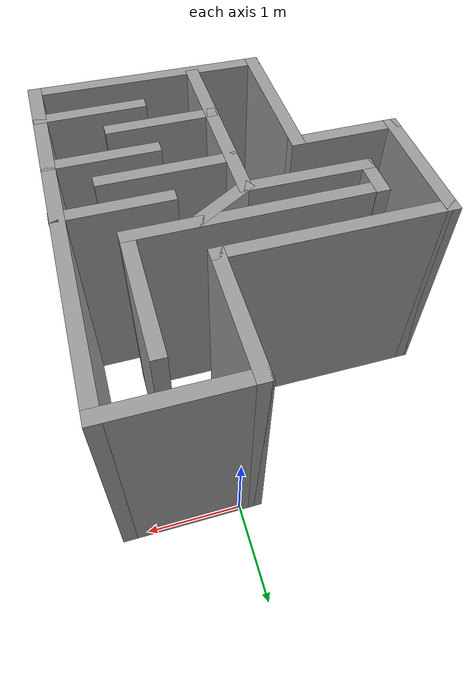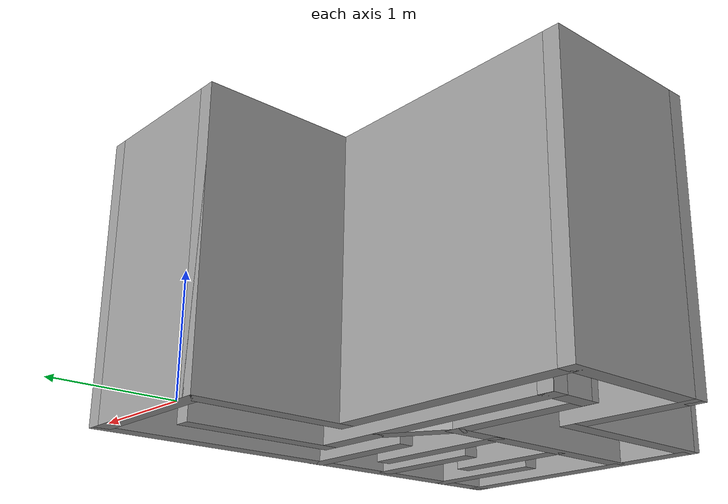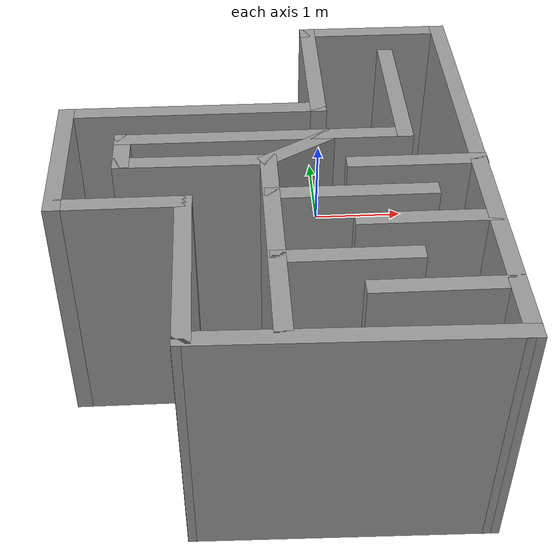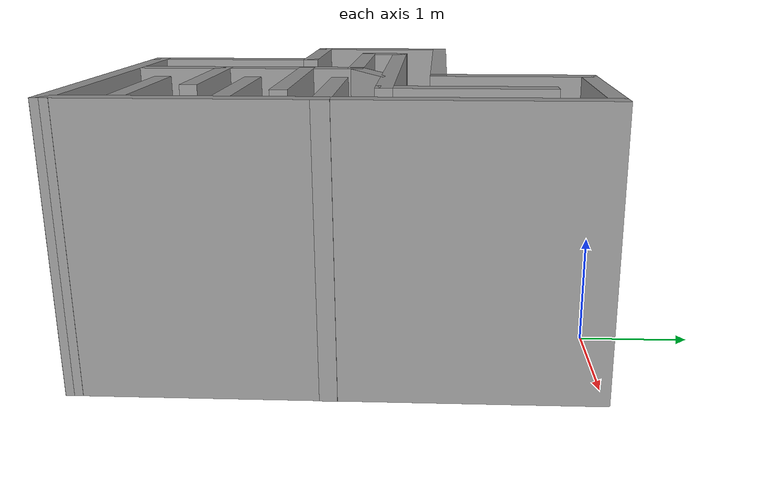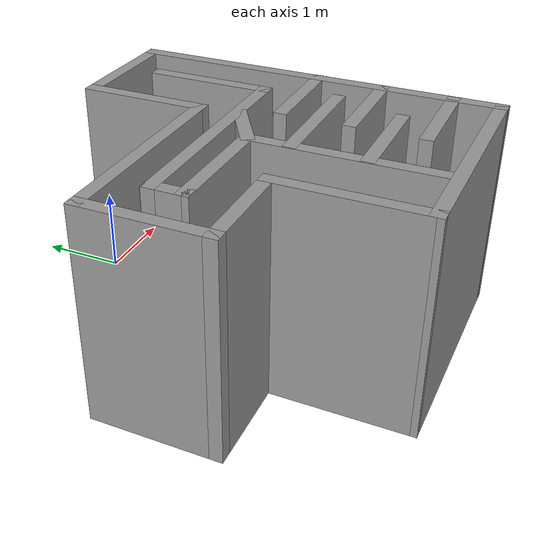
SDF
<?xml version='1.0'?>
<sdf version='1.7'>
  <model name='eval.world'>
    <pose>-0.657461 -2.21571 0 0 -0 0</pose>
    <link name='Wall_0'>
      <collision name='Wall_0_Collision'>
        <geometry>
          <box>
            <size>1.75 0.15 2.5</size>
          </box>
        </geometry>
        <pose>0 0 1.25 0 -0 0</pose>
      </collision>
      <visual name='Wall_0_Visual'>
        <pose>0 0 1.25 0 -0 0</pose>
        <geometry>
          <box>
            <size>1.75 0.15 2.5</size>
          </box>
        </geometry>
        <material>
          <script>
            <uri>file://media/materials/scripts/gazebo.material</uri>
            <name>Gazebo/Grey</name>
          </script>
          <ambient>1 1 1 1</ambient>
        </material>
        <meta>
          <layer>0</layer>
        </meta>
      </visual>
      <pose>-0.752539 -1.32429 0 0 -0 1.5708</pose>
    </link>
    <link name='Wall_1'>
      <collision name='Wall_1_Collision'>
        <geometry>
          <box>
            <size>1.25 0.15 2.5</size>
          </box>
        </geometry>
        <pose>0 0 1.25 0 -0 0</pose>
      </collision>
      <visual name='Wall_1_Visual'>
        <pose>0 0 1.25 0 -0 0</pose>
        <geometry>
          <box>
            <size>1.25 0.15 2.5</size>
          </box>
        </geometry>
        <material>
          <script>
            <uri>file://media/materials/scripts/gazebo.material</uri>
            <name>Gazebo/Grey</name>
          </script>
          <ambient>1 1 1 1</ambient>
        </material>
        <meta>
          <layer>0</layer>
        </meta>
      </visual>
      <pose>-1.30254 -0.524286 0 0 -0 3.14159</pose>
    </link>
    <link name='Wall_10'>
      <collision name='Wall_10_Collision'>
        <geometry>
          <box>
            <size>1.449 0.15 2.5</size>
          </box>
        </geometry>
        <pose>0 0 1.25 0 -0 0</pose>
      </collision>
      <visual name='Wall_10_Visual'>
        <pose>0 0 1.25 0 -0 0</pose>
        <geometry>
          <box>
            <size>1.449 0.15 2.5</size>
          </box>
        </geometry>
        <material>
          <script>
            <uri>file://media/materials/scripts/gazebo.material</uri>
            <name>Gazebo/Grey</name>
          </script>
          <ambient>1 1 1 1</ambient>
        </material>
        <meta>
          <layer>0</layer>
        </meta>
      </visual>
      <pose>-0.6584 0.029547 0 0 -0 3.13291</pose>
    </link>
    <link name='Wall_11'>
      <collision name='Wall_11_Collision'>
        <geometry>
          <box>
            <size>0.5 0.15 2.5</size>
          </box>
        </geometry>
        <pose>0 0 1.25 0 -0 0</pose>
      </collision>
      <visual name='Wall_11_Visual'>
        <pose>0 0 1.25 0 -0 0</pose>
        <geometry>
          <box>
            <size>0.5 0.15 2.5</size>
          </box>
        </geometry>
        <material>
          <script>
            <uri>file://media/materials/scripts/gazebo.material</uri>
            <name>Gazebo/Grey</name>
          </script>
          <ambient>1 1 1 1</ambient>
        </material>
        <meta>
          <layer>0</layer>
        </meta>
      </visual>
      <pose>-1.30787 0.215158 0 0 -0 1.5708</pose>
    </link>
    <link name='Wall_12'>
      <collision name='Wall_12_Collision'>
        <geometry>
          <box>
            <size>2.71023 0.15 2.5</size>
          </box>
        </geometry>
        <pose>0 0 1.25 0 -0 0</pose>
      </collision>
      <visual name='Wall_12_Visual'>
        <pose>0 0 1.25 0 -0 0</pose>
        <geometry>
          <box>
            <size>2.71023 0.15 2.5</size>
          </box>
        </geometry>
        <material>
          <script>
            <uri>file://media/materials/scripts/gazebo.material</uri>
            <name>Gazebo/Grey</name>
          </script>
          <ambient>1 1 1 1</ambient>
        </material>
        <meta>
          <layer>0</layer>
        </meta>
      </visual>
      <pose>-0.027761 0.385187 0 0 -0 0</pose>
    </link>
    <link name='Wall_13'>
      <collision name='Wall_13_Collision'>
        <geometry>
          <box>
            <size>1.5 0.15 2.5</size>
          </box>
        </geometry>
        <pose>0 0 1.25 0 -0 0</pose>
      </collision>
      <visual name='Wall_13_Visual'>
        <pose>0 0 1.25 0 -0 0</pose>
        <geometry>
          <box>
            <size>1.5 0.15 2.5</size>
          </box>
        </geometry>
        <material>
          <script>
            <uri>file://media/materials/scripts/gazebo.material</uri>
            <name>Gazebo/Grey</name>
          </script>
          <ambient>1 1 1 1</ambient>
        </material>
        <meta>
          <layer>0</layer>
        </meta>
      </visual>
      <pose>1.25235 1.06019 0 0 -0 1.5708</pose>
    </link>
    <link name='Wall_16'>
      <collision name='Wall_16_Collision'>
        <geometry>
          <box>
            <size>1.25 0.15 2.5</size>
          </box>
        </geometry>
        <pose>0 0 1.25 0 -0 0</pose>
      </collision>
      <visual name='Wall_16_Visual'>
        <pose>0 0 1.25 0 -0 0</pose>
        <geometry>
          <box>
            <size>1.25 0.15 2.5</size>
          </box>
        </geometry>
        <material>
          <script>
            <uri>file://media/materials/scripts/gazebo.material</uri>
            <name>Gazebo/Grey</name>
          </script>
          <ambient>1 1 1 1</ambient>
        </material>
        <meta>
          <layer>0</layer>
        </meta>
      </visual>
      <pose>1.30254 -0.048229 0 0 -0 3.14159</pose>
    </link>
    <link name='Wall_18'>
      <collision name='Wall_18_Collision'>
        <geometry>
          <box>
            <size>1.5 0.15 2.5</size>
          </box>
        </geometry>
        <pose>0 0 1.25 0 -0 0</pose>
      </collision>
      <visual name='Wall_18_Visual'>
        <pose>0 0 1.25 0 -0 0</pose>
        <geometry>
          <box>
            <size>1.5 0.15 2.5</size>
          </box>
        </geometry>
        <material>
          <script>
            <uri>file://media/materials/scripts/gazebo.material</uri>
            <name>Gazebo/Grey</name>
          </script>
          <ambient>1 1 1 1</ambient>
        </material>
        <meta>
          <layer>0</layer>
        </meta>
      </visual>
      <pose>0.684869 -0.453604 0 0 -0 0</pose>
    </link>
    <link name='Wall_2'>
      <collision name='Wall_2_Collision'>
        <geometry>
          <box>
            <size>1.5 0.15 2.5</size>
          </box>
        </geometry>
        <pose>0 0 1.25 0 -0 0</pose>
      </collision>
      <visual name='Wall_2_Visual'>
        <pose>0 0 1.25 0 -0 0</pose>
        <geometry>
          <box>
            <size>1.5 0.15 2.5</size>
          </box>
        </geometry>
        <material>
          <script>
            <uri>file://media/materials/scripts/gazebo.material</uri>
            <name>Gazebo/Grey</name>
          </script>
          <ambient>1 1 1 1</ambient>
        </material>
        <meta>
          <layer>0</layer>
        </meta>
      </visual>
      <pose>-1.85254 0.150714 0 0 -0 1.5708</pose>
    </link>
    <link name='Wall_20'>
      <collision name='Wall_20_Collision'>
        <geometry>
          <box>
            <size>1.25 0.15 2.5</size>
          </box>
        </geometry>
        <pose>0 0 1.25 0 -0 0</pose>
      </collision>
      <visual name='Wall_20_Visual'>
        <pose>0 0 1.25 0 -0 0</pose>
        <geometry>
          <box>
            <size>1.25 0.15 2.5</size>
          </box>
        </geometry>
        <material>
          <script>
            <uri>file://media/materials/scripts/gazebo.material</uri>
            <name>Gazebo/Grey</name>
          </script>
          <ambient>1 1 1 1</ambient>
        </material>
        <meta>
          <layer>0</layer>
        </meta>
      </visual>
      <pose>1.29126 -0.82907 0 0 -0 3.14159</pose>
    </link>
    <link name='Wall_22'>
      <collision name='Wall_22_Collision'>
        <geometry>
          <box>
            <size>1.25 0.15 2.5</size>
          </box>
        </geometry>
        <pose>0 0 1.25 0 -0 0</pose>
      </collision>
      <visual name='Wall_22_Visual'>
        <pose>0 0 1.25 0 -0 0</pose>
        <geometry>
          <box>
            <size>1.25 0.15 2.5</size>
          </box>
        </geometry>
        <material>
          <script>
            <uri>file://media/materials/scripts/gazebo.material</uri>
            <name>Gazebo/Grey</name>
          </script>
          <ambient>1 1 1 1</ambient>
        </material>
        <meta>
          <layer>0</layer>
        </meta>
      </visual>
      <pose>0.565262 -1.26027 0 0 -0 0</pose>
    </link>
    <link name='Wall_24'>
      <collision name='Wall_24_Collision'>
        <geometry>
          <box>
            <size>1.25 0.15 2.5</size>
          </box>
        </geometry>
        <pose>0 0 1.25 0 -0 0</pose>
      </collision>
      <visual name='Wall_24_Visual'>
        <pose>0 0 1.25 0 -0 0</pose>
        <geometry>
          <box>
            <size>1.25 0.15 2.5</size>
          </box>
        </geometry>
        <material>
          <script>
            <uri>file://media/materials/scripts/gazebo.material</uri>
            <name>Gazebo/Grey</name>
          </script>
          <ambient>1 1 1 1</ambient>
        </material>
        <meta>
          <layer>0</layer>
        </meta>
      </visual>
      <pose>1.28881 -1.64505 0 0 -0 3.14159</pose>
    </link>
    <link name='Wall_26'>
      <collision name='Wall_26_Collision'>
        <geometry>
          <box>
            <size>0.785304 0.15 2.5</size>
          </box>
        </geometry>
        <pose>0 0 1.25 0 -0 0</pose>
      </collision>
      <visual name='Wall_26_Visual'>
        <pose>0 0 1.25 0 -0 0</pose>
        <geometry>
          <box>
            <size>0.785304 0.15 2.5</size>
          </box>
        </geometry>
        <material>
          <script>
            <uri>file://media/materials/scripts/gazebo.material</uri>
            <name>Gazebo/Grey</name>
          </script>
          <ambient>1 1 1 1</ambient>
        </material>
        <meta>
          <layer>0</layer>
        </meta>
      </visual>
      <pose>0.265929 0.189468 0 0 -0 -2.59334</pose>
    </link>
    <link name='Wall_3'>
      <collision name='Wall_3_Collision'>
        <geometry>
          <box>
            <size>2.5 0.15 2.5</size>
          </box>
        </geometry>
        <pose>0 0 1.25 0 -0 0</pose>
      </collision>
      <visual name='Wall_3_Visual'>
        <pose>0 0 1.25 0 -0 0</pose>
        <geometry>
          <box>
            <size>2.5 0.15 2.5</size>
          </box>
        </geometry>
        <material>
          <script>
            <uri>file://media/materials/scripts/gazebo.material</uri>
            <name>Gazebo/Grey</name>
          </script>
          <ambient>1 1 1 1</ambient>
        </material>
        <meta>
          <layer>0</layer>
        </meta>
      </visual>
      <pose>-0.677539 0.825714 0 0 -0 0</pose>
    </link>
    <link name='Wall_4'>
      <collision name='Wall_4_Collision'>
        <geometry>
          <box>
            <size>1.5 0.15 2.5</size>
          </box>
        </geometry>
        <pose>0 0 1.25 0 -0 0</pose>
      </collision>
      <visual name='Wall_4_Visual'>
        <pose>0 0 1.25 0 -0 0</pose>
        <geometry>
          <box>
            <size>1.5 0.15 2.5</size>
          </box>
        </geometry>
        <material>
          <script>
            <uri>file://media/materials/scripts/gazebo.material</uri>
            <name>Gazebo/Grey</name>
          </script>
          <ambient>1 1 1 1</ambient>
        </material>
        <meta>
          <layer>0</layer>
        </meta>
      </visual>
      <pose>0.497461 1.50071 0 0 -0 1.5708</pose>
    </link>
    <link name='Wall_5'>
      <collision name='Wall_5_Collision'>
        <geometry>
          <box>
            <size>1.5 0.15 2.5</size>
          </box>
        </geometry>
        <pose>0 0 1.25 0 -0 0</pose>
      </collision>
      <visual name='Wall_5_Visual'>
        <pose>0 0 1.25 0 -0 0</pose>
        <geometry>
          <box>
            <size>1.5 0.15 2.5</size>
          </box>
        </geometry>
        <material>
          <script>
            <uri>file://media/materials/scripts/gazebo.material</uri>
            <name>Gazebo/Grey</name>
          </script>
          <ambient>1 1 1 1</ambient>
        </material>
        <meta>
          <layer>0</layer>
        </meta>
      </visual>
      <pose>1.17246 2.17571 0 0 -0 0</pose>
    </link>
    <link name='Wall_6'>
      <collision name='Wall_6_Collision'>
        <geometry>
          <box>
            <size>4.5 0.15 2.5</size>
          </box>
        </geometry>
        <pose>0 0 1.25 0 -0 0</pose>
      </collision>
      <visual name='Wall_6_Visual'>
        <pose>0 0 1.25 0 -0 0</pose>
        <geometry>
          <box>
            <size>4.5 0.15 2.5</size>
          </box>
        </geometry>
        <material>
          <script>
            <uri>file://media/materials/scripts/gazebo.material</uri>
            <name>Gazebo/Grey</name>
          </script>
          <ambient>1 1 1 1</ambient>
        </material>
        <meta>
          <layer>0</layer>
        </meta>
      </visual>
      <pose>1.84746 0.000714 0 0 -0 -1.5708</pose>
    </link>
    <link name='Wall_7'>
      <collision name='Wall_7_Collision'>
        <geometry>
          <box>
            <size>2.75048 0.15 2.5</size>
          </box>
        </geometry>
        <pose>0 0 1.25 0 -0 0</pose>
      </collision>
      <visual name='Wall_7_Visual'>
        <pose>0 0 1.25 0 -0 0</pose>
        <geometry>
          <box>
            <size>2.75048 0.15 2.5</size>
          </box>
        </geometry>
        <material>
          <script>
            <uri>file://media/materials/scripts/gazebo.material</uri>
            <name>Gazebo/Grey</name>
          </script>
          <ambient>1 1 1 1</ambient>
        </material>
        <meta>
          <layer>0</layer>
        </meta>
      </visual>
      <pose>0.547461 -2.14929 0 0 -0 3.12236</pose>
    </link>
    <link name='Wall_9'>
      <collision name='Wall_9_Collision'>
        <geometry>
          <box>
            <size>2.23875 0.15 2.5</size>
          </box>
        </geometry>
        <pose>0 0 1.25 0 -0 0</pose>
      </collision>
      <visual name='Wall_9_Visual'>
        <pose>0 0 1.25 0 -0 0</pose>
        <geometry>
          <box>
            <size>2.23875 0.15 2.5</size>
          </box>
        </geometry>
        <material>
          <script>
            <uri>file://media/materials/scripts/gazebo.material</uri>
            <name>Gazebo/Grey</name>
          </script>
          <ambient>1 1 1 1</ambient>
        </material>
        <meta>
          <layer>0</layer>
        </meta>
      </visual>
      <pose>-0.003287 -1.02045 0 0 -0 1.5762</pose>
    </link>
    <static>1</static>
  </model>
</sdf>
